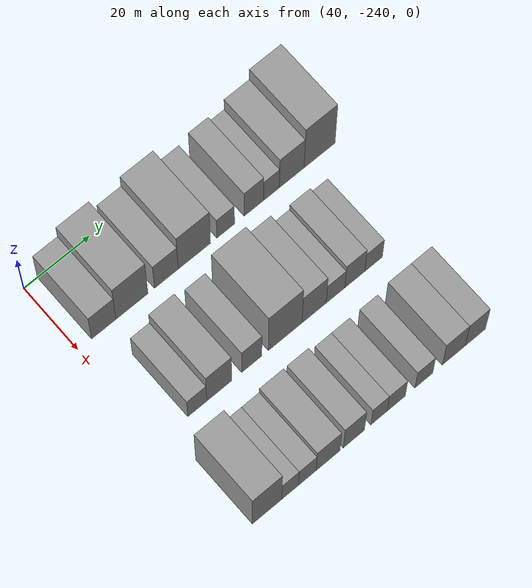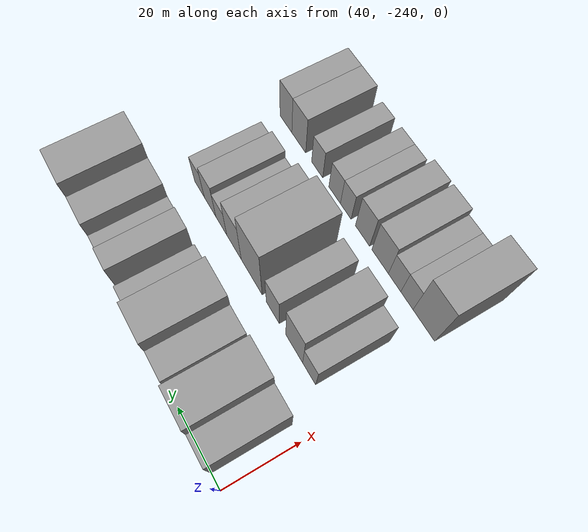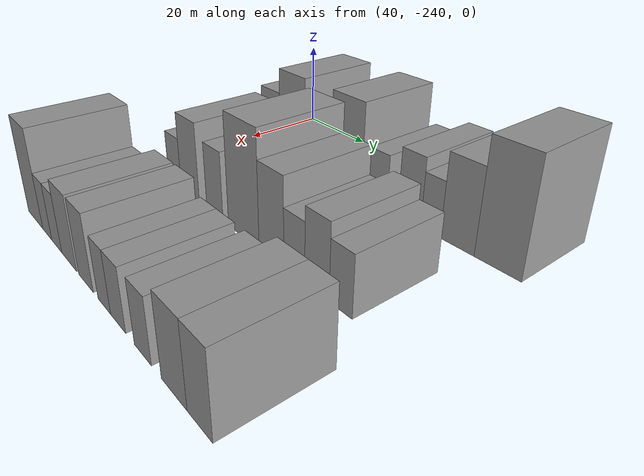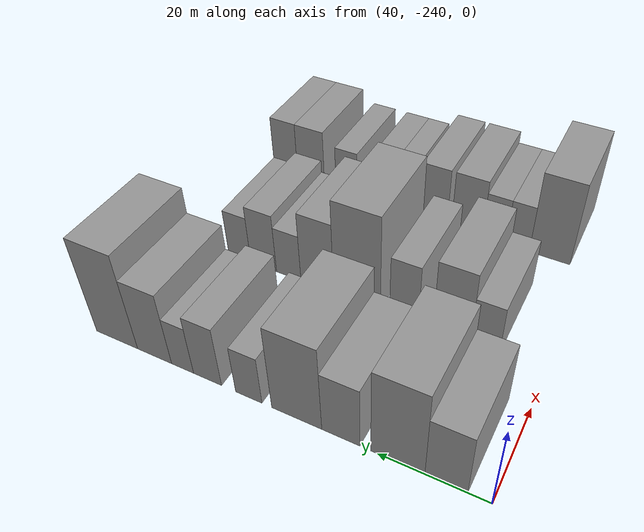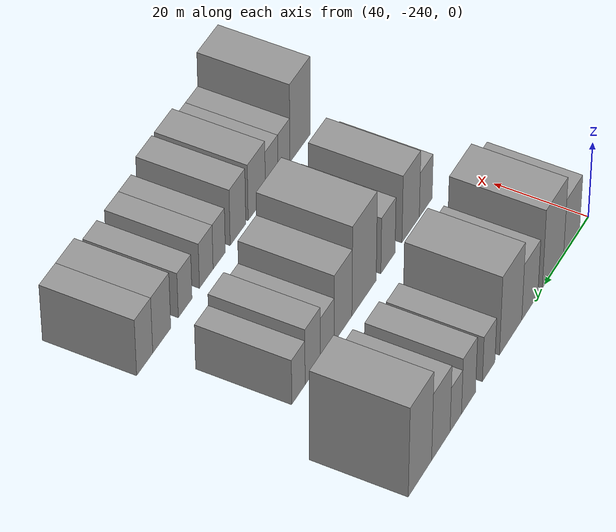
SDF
<sdf version="1.6">
 <world name="default">
  <model name="building_12">
   <static>1</static>
   <pose>50.0000 -232.1955 0 0.000000 0.000000 0.000000</pose>
   <link name="link">
    <pose>0 0 7.50 0 0 0</pose>
    <collision name="collision"><geometry><box><size>20.0000 7.4026 15.0000</size></box></geometry></collision>
    <visual name="visual">
     <cast_shadows>0</cast_shadows>
     <geometry><box><size>20.0000 7.4026 15.0000</size></box></geometry>
     <material>
      <script>
       <uri>model://grey_wall/materials/scripts</uri>
       <uri>model://grey_wall/materials/textures</uri>
       <name>vrc/grey_wall</name>
      </script>
     </material>
    </visual>
   </link>
  </model>
  <model name="building_13">
   <static>1</static>
   <pose>50.0000 -223.6190 0 0.000000 0.000000 0.000000</pose>
   <link name="link">
    <pose>0 0 10.50 0 0 0</pose>
    <collision name="collision"><geometry><box><size>20.0000 9.7504 21.0000</size></box></geometry></collision>
    <visual name="visual">
     <cast_shadows>0</cast_shadows>
     <geometry><box><size>20.0000 9.7504 21.0000</size></box></geometry>
     <material>
      <script>
       <uri>model://grey_wall/materials/scripts</uri>
       <uri>model://grey_wall/materials/textures</uri>
       <name>vrc/grey_wall</name>
      </script>
     </material>
    </visual>
   </link>
  </model>
  <model name="building_14">
   <static>1</static>
   <pose>50.0000 -213.1041 0 0.000000 0.000000 0.000000</pose>
   <link name="link">
    <pose>0 0 7.50 0 0 0</pose>
    <collision name="collision"><geometry><box><size>20.0000 7.2796 15.0000</size></box></geometry></collision>
    <visual name="visual">
     <cast_shadows>0</cast_shadows>
     <geometry><box><size>20.0000 7.2796 15.0000</size></box></geometry>
     <material>
      <script>
       <uri>model://grey_wall/materials/scripts</uri>
       <uri>model://grey_wall/materials/textures</uri>
       <name>vrc/grey_wall</name>
      </script>
     </material>
    </visual>
   </link>
  </model>
  <model name="building_15">
   <static>1</static>
   <pose>50.0000 -204.4981 0 0.000000 0.000000 0.000000</pose>
   <link name="link">
    <pose>0 0 10.50 0 0 0</pose>
    <collision name="collision"><geometry><box><size>20.0000 9.9324 21.0000</size></box></geometry></collision>
    <visual name="visual">
     <cast_shadows>0</cast_shadows>
     <geometry><box><size>20.0000 9.9324 21.0000</size></box></geometry>
     <material>
      <script>
       <uri>model://grey_wall/materials/scripts</uri>
       <uri>model://grey_wall/materials/textures</uri>
       <name>vrc/grey_wall</name>
      </script>
     </material>
    </visual>
   </link>
  </model>
  <model name="building_16">
   <static>1</static>
   <pose>50.0000 -194.7910 0 0.000000 0.000000 0.000000</pose>
   <link name="link">
    <pose>0 0 6.00 0 0 0</pose>
    <collision name="collision"><geometry><box><size>20.0000 5.4818 12.0000</size></box></geometry></collision>
    <visual name="visual">
     <cast_shadows>0</cast_shadows>
     <geometry><box><size>20.0000 5.4818 12.0000</size></box></geometry>
     <material>
      <script>
       <uri>model://grey_wall/materials/scripts</uri>
       <uri>model://grey_wall/materials/textures</uri>
       <name>vrc/grey_wall</name>
      </script>
     </material>
    </visual>
   </link>
  </model>
  <model name="building_17">
   <static>1</static>
   <pose>50.0000 -186.0106 0 0.000000 0.000000 0.000000</pose>
   <link name="link">
    <pose>0 0 7.50 0 0 0</pose>
    <collision name="collision"><geometry><box><size>20.0000 6.0790 15.0000</size></box></geometry></collision>
    <visual name="visual">
     <cast_shadows>0</cast_shadows>
     <geometry><box><size>20.0000 6.0790 15.0000</size></box></geometry>
     <material>
      <script>
       <uri>model://grey_wall/materials/scripts</uri>
       <uri>model://grey_wall/materials/textures</uri>
       <name>vrc/grey_wall</name>
      </script>
     </material>
    </visual>
   </link>
  </model>
  <model name="building_18">
   <static>1</static>
   <pose>50.0000 -180.5212 0 0.000000 0.000000 0.000000</pose>
   <link name="link">
    <pose>0 0 6.00 0 0 0</pose>
    <collision name="collision"><geometry><box><size>20.0000 4.8997 12.0000</size></box></geometry></collision>
    <visual name="visual">
     <cast_shadows>0</cast_shadows>
     <geometry><box><size>20.0000 4.8997 12.0000</size></box></geometry>
     <material>
      <script>
       <uri>model://grey_wall/materials/scripts</uri>
       <uri>model://grey_wall/materials/textures</uri>
       <name>vrc/grey_wall</name>
      </script>
     </material>
    </visual>
   </link>
  </model>
  <model name="building_19">
   <static>1</static>
   <pose>50.0000 -174.1651 0 0.000000 0.000000 0.000000</pose>
   <link name="link">
    <pose>0 0 9.00 0 0 0</pose>
    <collision name="collision"><geometry><box><size>20.0000 7.8126 18.0000</size></box></geometry></collision>
    <visual name="visual">
     <cast_shadows>0</cast_shadows>
     <geometry><box><size>20.0000 7.8126 18.0000</size></box></geometry>
     <material>
      <script>
       <uri>model://grey_wall/materials/scripts</uri>
       <uri>model://grey_wall/materials/textures</uri>
       <name>vrc/grey_wall</name>
      </script>
     </material>
    </visual>
   </link>
  </model>
  <model name="building_20">
   <static>1</static>
   <pose>50.0000 -165.3733 0 0.000000 0.000000 0.000000</pose>
   <link name="link">
    <pose>0 0 12.00 0 0 0</pose>
    <collision name="collision"><geometry><box><size>20.0000 9.7710 24.0000</size></box></geometry></collision>
    <visual name="visual">
     <cast_shadows>0</cast_shadows>
     <geometry><box><size>20.0000 9.7710 24.0000</size></box></geometry>
     <material>
      <script>
       <uri>model://grey_wall/materials/scripts</uri>
       <uri>model://grey_wall/materials/textures</uri>
       <name>vrc/grey_wall</name>
      </script>
     </material>
    </visual>
   </link>
  </model>
  <model name="building_88">
   <static>1</static>
   <pose>79.0000 -228.1638 0 0.000000 0.000000 0.000000</pose>
   <link name="link">
    <pose>0 0 6.00 0 0 0</pose>
    <collision name="collision"><geometry><box><size>20.0000 5.7304 12.0000</size></box></geometry></collision>
    <visual name="visual">
     <cast_shadows>0</cast_shadows>
     <geometry><box><size>20.0000 5.7304 12.0000</size></box></geometry>
     <material>
      <script>
       <uri>model://grey_wall/materials/scripts</uri>
       <uri>model://grey_wall/materials/textures</uri>
       <name>vrc/grey_wall</name>
      </script>
     </material>
    </visual>
   </link>
  </model>
  <model name="building_89">
   <static>1</static>
   <pose>79.0000 -221.4767 0 0.000000 0.000000 0.000000</pose>
   <link name="link">
    <pose>0 0 9.00 0 0 0</pose>
    <collision name="collision"><geometry><box><size>20.0000 7.6439 18.0000</size></box></geometry></collision>
    <visual name="visual">
     <cast_shadows>0</cast_shadows>
     <geometry><box><size>20.0000 7.6439 18.0000</size></box></geometry>
     <material>
      <script>
       <uri>model://grey_wall/materials/scripts</uri>
       <uri>model://grey_wall/materials/textures</uri>
       <name>vrc/grey_wall</name>
      </script>
     </material>
    </visual>
   </link>
  </model>
  <model name="building_90">
   <static>1</static>
   <pose>79.0000 -211.5682 0 0.000000 0.000000 0.000000</pose>
   <link name="link">
    <pose>0 0 7.50 0 0 0</pose>
    <collision name="collision"><geometry><box><size>20.0000 6.1731 15.0000</size></box></geometry></collision>
    <visual name="visual">
     <cast_shadows>0</cast_shadows>
     <geometry><box><size>20.0000 6.1731 15.0000</size></box></geometry>
     <material>
      <script>
       <uri>model://grey_wall/materials/scripts</uri>
       <uri>model://grey_wall/materials/textures</uri>
       <name>vrc/grey_wall</name>
      </script>
     </material>
    </visual>
   </link>
  </model>
  <model name="building_91">
   <static>1</static>
   <pose>79.0000 -201.2992 0 0.000000 0.000000 0.000000</pose>
   <link name="link">
    <pose>0 0 12.00 0 0 0</pose>
    <collision name="collision"><geometry><box><size>20.0000 10.3650 24.0000</size></box></geometry></collision>
    <visual name="visual">
     <cast_shadows>0</cast_shadows>
     <geometry><box><size>20.0000 10.3650 24.0000</size></box></geometry>
     <material>
      <script>
       <uri>model://grey_wall/materials/scripts</uri>
       <uri>model://grey_wall/materials/textures</uri>
       <name>vrc/grey_wall</name>
      </script>
     </material>
    </visual>
   </link>
  </model>
  <model name="building_92">
   <static>1</static>
   <pose>79.0000 -192.3547 0 0.000000 0.000000 0.000000</pose>
   <link name="link">
    <pose>0 0 9.00 0 0 0</pose>
    <collision name="collision"><geometry><box><size>20.0000 7.5241 18.0000</size></box></geometry></collision>
    <visual name="visual">
     <cast_shadows>0</cast_shadows>
     <geometry><box><size>20.0000 7.5241 18.0000</size></box></geometry>
     <material>
      <script>
       <uri>model://grey_wall/materials/scripts</uri>
       <uri>model://grey_wall/materials/textures</uri>
       <name>vrc/grey_wall</name>
      </script>
     </material>
    </visual>
   </link>
  </model>
  <model name="building_93">
   <static>1</static>
   <pose>79.0000 -185.7040 0 0.000000 0.000000 0.000000</pose>
   <link name="link">
    <pose>0 0 6.00 0 0 0</pose>
    <collision name="collision"><geometry><box><size>20.0000 5.7774 12.0000</size></box></geometry></collision>
    <visual name="visual">
     <cast_shadows>0</cast_shadows>
     <geometry><box><size>20.0000 5.7774 12.0000</size></box></geometry>
     <material>
      <script>
       <uri>model://grey_wall/materials/scripts</uri>
       <uri>model://grey_wall/materials/textures</uri>
       <name>vrc/grey_wall</name>
      </script>
     </material>
    </visual>
   </link>
  </model>
  <model name="building_94">
   <static>1</static>
   <pose>79.0000 -179.6791 0 0.000000 0.000000 0.000000</pose>
   <link name="link">
    <pose>0 0 7.50 0 0 0</pose>
    <collision name="collision"><geometry><box><size>20.0000 6.2723 15.0000</size></box></geometry></collision>
    <visual name="visual">
     <cast_shadows>0</cast_shadows>
     <geometry><box><size>20.0000 6.2723 15.0000</size></box></geometry>
     <material>
      <script>
       <uri>model://grey_wall/materials/scripts</uri>
       <uri>model://grey_wall/materials/textures</uri>
       <name>vrc/grey_wall</name>
      </script>
     </material>
    </visual>
   </link>
  </model>
  <model name="building_95">
   <static>1</static>
   <pose>79.0000 -173.8075 0 0.000000 0.000000 0.000000</pose>
   <link name="link">
    <pose>0 0 6.00 0 0 0</pose>
    <collision name="collision"><geometry><box><size>20.0000 5.4710 12.0000</size></box></geometry></collision>
    <visual name="visual">
     <cast_shadows>0</cast_shadows>
     <geometry><box><size>20.0000 5.4710 12.0000</size></box></geometry>
     <material>
      <script>
       <uri>model://grey_wall/materials/scripts</uri>
       <uri>model://grey_wall/materials/textures</uri>
       <name>vrc/grey_wall</name>
      </script>
     </material>
    </visual>
   </link>
  </model>
  <model name="building_152">
   <static>1</static>
   <pose>108.0000 -231.8674 0 0.000000 0.000000 0.000000</pose>
   <link name="link">
    <pose>0 0 10.50 0 0 0</pose>
    <collision name="collision"><geometry><box><size>20.0000 8.7927 21.0000</size></box></geometry></collision>
    <visual name="visual">
     <cast_shadows>0</cast_shadows>
     <geometry><box><size>20.0000 8.7927 21.0000</size></box></geometry>
     <material>
      <script>
       <uri>model://grey_wall/materials/scripts</uri>
       <uri>model://grey_wall/materials/textures</uri>
       <name>vrc/grey_wall</name>
      </script>
     </material>
    </visual>
   </link>
  </model>
  <model name="building_153">
   <static>1</static>
   <pose>108.0000 -224.9116 0 0.000000 0.000000 0.000000</pose>
   <link name="link">
    <pose>0 0 6.00 0 0 0</pose>
    <collision name="collision"><geometry><box><size>20.0000 5.1187 12.0000</size></box></geometry></collision>
    <visual name="visual">
     <cast_shadows>0</cast_shadows>
     <geometry><box><size>20.0000 5.1187 12.0000</size></box></geometry>
     <material>
      <script>
       <uri>model://grey_wall/materials/scripts</uri>
       <uri>model://grey_wall/materials/textures</uri>
       <name>vrc/grey_wall</name>
      </script>
     </material>
    </visual>
   </link>
  </model>
  <model name="building_154">
   <static>1</static>
   <pose>108.0000 -219.6864 0 0.000000 0.000000 0.000000</pose>
   <link name="link">
    <pose>0 0 6.00 0 0 0</pose>
    <collision name="collision"><geometry><box><size>20.0000 5.3317 12.0000</size></box></geometry></collision>
    <visual name="visual">
     <cast_shadows>0</cast_shadows>
     <geometry><box><size>20.0000 5.3317 12.0000</size></box></geometry>
     <material>
      <script>
       <uri>model://grey_wall/materials/scripts</uri>
       <uri>model://grey_wall/materials/textures</uri>
       <name>vrc/grey_wall</name>
      </script>
     </material>
    </visual>
   </link>
  </model>
  <model name="building_155">
   <static>1</static>
   <pose>108.0000 -213.3870 0 0.000000 0.000000 0.000000</pose>
   <link name="link">
    <pose>0 0 7.50 0 0 0</pose>
    <collision name="collision"><geometry><box><size>20.0000 7.2673 15.0000</size></box></geometry></collision>
    <visual name="visual">
     <cast_shadows>0</cast_shadows>
     <geometry><box><size>20.0000 7.2673 15.0000</size></box></geometry>
     <material>
      <script>
       <uri>model://grey_wall/materials/scripts</uri>
       <uri>model://grey_wall/materials/textures</uri>
       <name>vrc/grey_wall</name>
      </script>
     </material>
    </visual>
   </link>
  </model>
  <model name="building_156">
   <static>1</static>
   <pose>108.0000 -205.5102 0 0.000000 0.000000 0.000000</pose>
   <link name="link">
    <pose>0 0 7.50 0 0 0</pose>
    <collision name="collision"><geometry><box><size>20.0000 6.4862 15.0000</size></box></geometry></collision>
    <visual name="visual">
     <cast_shadows>0</cast_shadows>
     <geometry><box><size>20.0000 6.4862 15.0000</size></box></geometry>
     <material>
      <script>
       <uri>model://grey_wall/materials/scripts</uri>
       <uri>model://grey_wall/materials/textures</uri>
       <name>vrc/grey_wall</name>
      </script>
     </material>
    </visual>
   </link>
  </model>
  <model name="building_157">
   <static>1</static>
   <pose>108.0000 -197.7486 0 0.000000 0.000000 0.000000</pose>
   <link name="link">
    <pose>0 0 6.00 0 0 0</pose>
    <collision name="collision"><geometry><box><size>20.0000 5.0370 12.0000</size></box></geometry></collision>
    <visual name="visual">
     <cast_shadows>0</cast_shadows>
     <geometry><box><size>20.0000 5.0370 12.0000</size></box></geometry>
     <material>
      <script>
       <uri>model://grey_wall/materials/scripts</uri>
       <uri>model://grey_wall/materials/textures</uri>
       <name>vrc/grey_wall</name>
      </script>
     </material>
    </visual>
   </link>
  </model>
  <model name="building_158">
   <static>1</static>
   <pose>108.0000 -192.4457 0 0.000000 0.000000 0.000000</pose>
   <link name="link">
    <pose>0 0 6.00 0 0 0</pose>
    <collision name="collision"><geometry><box><size>20.0000 5.5688 12.0000</size></box></geometry></collision>
    <visual name="visual">
     <cast_shadows>0</cast_shadows>
     <geometry><box><size>20.0000 5.5688 12.0000</size></box></geometry>
     <material>
      <script>
       <uri>model://grey_wall/materials/scripts</uri>
       <uri>model://grey_wall/materials/textures</uri>
       <name>vrc/grey_wall</name>
      </script>
     </material>
    </visual>
   </link>
  </model>
  <model name="building_159">
   <static>1</static>
   <pose>108.0000 -183.8930 0 0.000000 0.000000 0.000000</pose>
   <link name="link">
    <pose>0 0 6.00 0 0 0</pose>
    <collision name="collision"><geometry><box><size>20.0000 5.5365 12.0000</size></box></geometry></collision>
    <visual name="visual">
     <cast_shadows>0</cast_shadows>
     <geometry><box><size>20.0000 5.5365 12.0000</size></box></geometry>
     <material>
      <script>
       <uri>model://grey_wall/materials/scripts</uri>
       <uri>model://grey_wall/materials/textures</uri>
       <name>vrc/grey_wall</name>
      </script>
     </material>
    </visual>
   </link>
  </model>
  <model name="building_160">
   <static>1</static>
   <pose>108.0000 -174.5465 0 0.000000 0.000000 0.000000</pose>
   <link name="link">
    <pose>0 0 7.50 0 0 0</pose>
    <collision name="collision"><geometry><box><size>20.0000 7.1565 15.0000</size></box></geometry></collision>
    <visual name="visual">
     <cast_shadows>0</cast_shadows>
     <geometry><box><size>20.0000 7.1565 15.0000</size></box></geometry>
     <material>
      <script>
       <uri>model://grey_wall/materials/scripts</uri>
       <uri>model://grey_wall/materials/textures</uri>
       <name>vrc/grey_wall</name>
      </script>
     </material>
    </visual>
   </link>
  </model>
  <model name="building_161">
   <static>1</static>
   <pose>108.0000 -167.7981 0 0.000000 0.000000 0.000000</pose>
   <link name="link">
    <pose>0 0 7.50 0 0 0</pose>
    <collision name="collision"><geometry><box><size>20.0000 6.3402 15.0000</size></box></geometry></collision>
    <visual name="visual">
     <cast_shadows>0</cast_shadows>
     <geometry><box><size>20.0000 6.3402 15.0000</size></box></geometry>
     <material>
      <script>
       <uri>model://grey_wall/materials/scripts</uri>
       <uri>model://grey_wall/materials/textures</uri>
       <name>vrc/grey_wall</name>
      </script>
     </material>
    </visual>
   </link>
  </model>
 </world>
</sdf>
